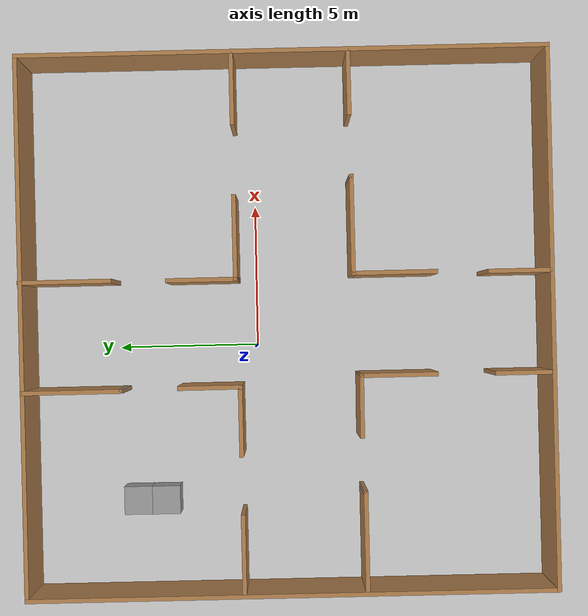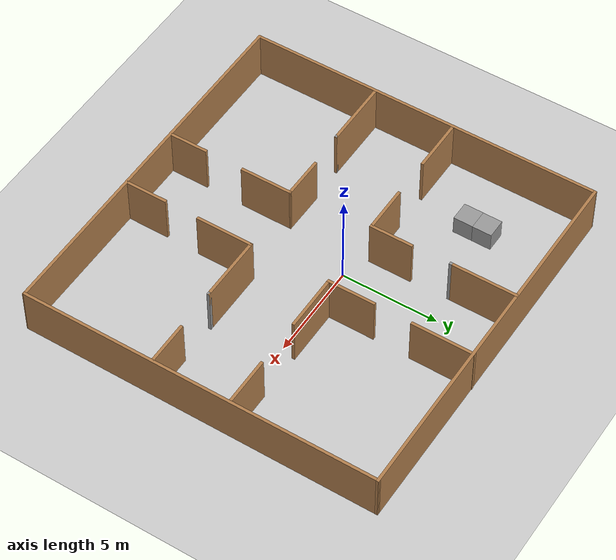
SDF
<sdf version="1.7">
 <world name="default">
  <light name="sun" type="directional">
   <pose>0 0 10 0 -0 0</pose>
   <diffuse>0.8 0.8 0.8 1</diffuse>
   <specular>0.2 0.2 0.2 1</specular>
   <attenuation>
    <range>1000</range>
    <constant>0.9</constant>
    <linear>0.01</linear>
    <quadratic>0.001</quadratic>
   </attenuation>
   <direction>-0.5 0.1 -0.9</direction>
   <spot><inner_angle>0</inner_angle><outer_angle>0</outer_angle><falloff>0</falloff></spot>
  </light>
  <model name="ground_plane">
   <static>1</static>
   <link name="link">
    <collision name="collision">
     <geometry><plane><normal>0 0 1</normal><size>100 100</size></plane></geometry>
     <surface>
      <contact><collide_bitmask>65535</collide_bitmask></contact>
      <friction><ode><mu>100</mu><mu2>50</mu2></ode></friction>
     </surface>
    </collision>
    <visual name="visual">
     <cast_shadows>0</cast_shadows>
     <geometry><plane><normal>0 0 1</normal><size>100 100</size></plane></geometry>
     <material>
      <script><uri>file://media/materials/scripts/gazebo.material</uri><name>Gazebo/Grey</name></script>
     </material>
    </visual>
   </link>
  </model>
  <gravity>0 0 -9.8</gravity>
  <magnetic_field>6e-06 2.3e-05 -4.2e-05</magnetic_field>
  <atmosphere type="adiabatic"/>
  <physics type="ode">
   <max_step_size>0.001</max_step_size>
   <real_time_factor>1</real_time_factor>
   <real_time_update_rate>1000</real_time_update_rate>
  </physics>
  <scene><ambient>0.4 0.4 0.4 1</ambient><background>0.7 0.7 0.7 1</background><shadows>1</shadows></scene>
  <spherical_coordinates>
   <surface_model>EARTH_WGS84</surface_model>
   <latitude_deg>0</latitude_deg>
   <longitude_deg>0</longitude_deg>
   <elevation>0</elevation>
   <heading_deg>0</heading_deg>
  </spherical_coordinates>
  <model name="vp_2.world">
   <pose>0.7675 -1.05082 0 0 -0 0</pose>
   <link name="Wall_0">
    <collision name="Wall_0_Collision">
     <geometry><box><size>18.5486 0.15 2.5</size></box></geometry>
     <pose>0 0 1.25 0 -0 0</pose>
    </collision>
    <visual name="Wall_0_Visual">
     <pose>0 0 1.25 0 -0 0</pose>
     <geometry><box><size>18.5486 0.15 2.5</size></box></geometry>
     <material>
      <script><uri>file://media/materials/scripts/gazebo.material</uri><name>Gazebo/Wood</name></script>
      <ambient>1 1 1 1</ambient>
     </material>
     <meta><layer>0</layer></meta>
    </visual>
    <pose>9.425 -0.011205 0 0 -0 1.56991</pose>
   </link>
   <link name="Wall_16">
    <collision name="Wall_16_Collision">
     <geometry><box><size>3.5 0.15 2.5</size></box></geometry>
     <pose>0 0 1.25 0 -0 0</pose>
    </collision>
    <visual name="Wall_16_Visual">
     <pose>0 0 1.25 0 -0 0</pose>
     <geometry><box><size>3.5 0.15 2.5</size></box></geometry>
     <material>
      <script><uri>file://media/materials/scripts/gazebo.material</uri><name>Gazebo/Wood</name></script>
      <ambient>1 1 1 1</ambient>
     </material>
     <meta><layer>0</layer></meta>
    </visual>
    <pose>-2.22938 7.47358 0 0 -0 -1.5708</pose>
   </link>
   <link name="Wall_17">
    <collision name="Wall_17_Collision">
     <geometry><box><size>0.15 0.15 2.5</size></box></geometry>
     <pose>0 0 1.25 0 -0 0</pose>
    </collision>
    <visual name="Wall_17_Visual">
     <pose>0 0 1.25 0 -0 0</pose>
     <geometry><box><size>0.15 0.15 2.5</size></box></geometry>
     <material>
      <script><uri>file://media/materials/scripts/gazebo.material</uri><name>Gazebo/Grey</name></script>
      <ambient>1 1 1 1</ambient>
     </material>
     <meta><layer>0</layer></meta>
    </visual>
    <pose>-2.22938 5.79858 0 0 -0 0</pose>
   </link>
   <link name="Wall_19">
    <collision name="Wall_19_Collision">
     <geometry><box><size>2.25 0.15 2.5</size></box></geometry>
     <pose>0 0 1.25 0 -0 0</pose>
    </collision>
    <visual name="Wall_19_Visual">
     <pose>0 0 1.25 0 -0 0</pose>
     <geometry><box><size>2.25 0.15 2.5</size></box></geometry>
     <material>
      <script><uri>file://media/materials/scripts/gazebo.material</uri><name>Gazebo/Wood</name></script>
      <ambient>1 1 1 1</ambient>
     </material>
     <meta><layer>0</layer></meta>
    </visual>
    <pose>-2.17587 2.70823 0 0 -0 1.5708</pose>
   </link>
   <link name="Wall_2">
    <collision name="Wall_2_Collision">
     <geometry><box><size>19 0.15 2.5</size></box></geometry>
     <pose>0 0 1.25 0 -0 0</pose>
    </collision>
    <visual name="Wall_2_Visual">
     <pose>0 0 1.25 0 -0 0</pose>
     <geometry><box><size>19 0.15 2.5</size></box></geometry>
     <material>
      <script><uri>file://media/materials/scripts/gazebo.material</uri><name>Gazebo/Wood</name></script>
      <ambient>1 1 1 1</ambient>
     </material>
     <meta><layer>0</layer></meta>
    </visual>
    <pose>-0.00818 -9.2105 0 0 -0 3.14159</pose>
   </link>
   <link name="Wall_21">
    <collision name="Wall_21_Collision">
     <geometry><box><size>2.5 0.15 2.5</size></box></geometry>
     <pose>0 0 1.25 0 -0 0</pose>
    </collision>
    <visual name="Wall_21_Visual">
     <pose>0 0 1.25 0 -0 0</pose>
     <geometry><box><size>2.5 0.15 2.5</size></box></geometry>
     <material>
      <script><uri>file://media/materials/scripts/gazebo.material</uri><name>Gazebo/Wood</name></script>
      <ambient>1 1 1 1</ambient>
     </material>
     <meta><layer>0</layer></meta>
    </visual>
    <pose>-3.35087 1.65823 0 0 -0 3.14159</pose>
   </link>
   <link name="Wall_23">
    <collision name="Wall_23_Collision">
     <geometry><box><size>2.75 0.15 2.5</size></box></geometry>
     <pose>0 0 1.25 0 -0 0</pose>
    </collision>
    <visual name="Wall_23_Visual">
     <pose>0 0 1.25 0 -0 0</pose>
     <geometry><box><size>2.75 0.15 2.5</size></box></geometry>
     <material>
      <script><uri>file://media/materials/scripts/gazebo.material</uri><name>Gazebo/Wood</name></script>
      <ambient>1 1 1 1</ambient>
     </material>
     <meta><layer>0</layer></meta>
    </visual>
    <pose>-7.97668 1.65752 0 0 -0 3.14159</pose>
   </link>
   <link name="Wall_25">
    <collision name="Wall_25_Collision">
     <geometry><box><size>3.25 0.15 2.5</size></box></geometry>
     <pose>0 0 1.25 0 -0 0</pose>
    </collision>
    <visual name="Wall_25_Visual">
     <pose>0 0 1.25 0 -0 0</pose>
     <geometry><box><size>3.25 0.15 2.5</size></box></geometry>
     <material>
      <script><uri>file://media/materials/scripts/gazebo.material</uri><name>Gazebo/Wood</name></script>
      <ambient>1 1 1 1</ambient>
     </material>
     <meta><layer>0</layer></meta>
    </visual>
    <pose>1.59244 7.66057 0 0 -0 -1.5708</pose>
   </link>
   <link name="Wall_29">
    <collision name="Wall_29_Collision">
     <geometry><box><size>2.5 0.15 2.5</size></box></geometry>
     <pose>0 0 1.25 0 -0 0</pose>
    </collision>
    <visual name="Wall_29_Visual">
     <pose>0 0 1.25 0 -0 0</pose>
     <geometry><box><size>2.5 0.15 2.5</size></box></geometry>
     <material>
      <script><uri>file://media/materials/scripts/gazebo.material</uri><name>Gazebo/Wood</name></script>
      <ambient>1 1 1 1</ambient>
     </material>
     <meta><layer>0</layer></meta>
    </visual>
    <pose>1.55894 2.91447 0 0 -0 -1.5708</pose>
   </link>
   <link name="Wall_3">
    <collision name="Wall_3_Collision">
     <geometry><box><size>18.5486 0.15 2.5</size></box></geometry>
     <pose>0 0 1.25 0 -0 0</pose>
    </collision>
    <visual name="Wall_3_Visual">
     <pose>0 0 1.25 0 -0 0</pose>
     <geometry><box><size>18.5486 0.15 2.5</size></box></geometry>
     <material>
      <script><uri>file://media/materials/scripts/gazebo.material</uri><name>Gazebo/Wood</name></script>
      <ambient>1 1 1 1</ambient>
     </material>
     <meta><layer>0</layer></meta>
    </visual>
    <pose>-9.425 -0.011205 0 0 -0 1.56991</pose>
   </link>
   <link name="Wall_30">
    <collision name="Wall_30_Collision">
     <geometry><box><size>3 0.15 2.5</size></box></geometry>
     <pose>0 0 1.25 0 -0 0</pose>
    </collision>
    <visual name="Wall_30_Visual">
     <pose>0 0 1.25 0 -0 0</pose>
     <geometry><box><size>3 0.15 2.5</size></box></geometry>
     <material>
      <script><uri>file://media/materials/scripts/gazebo.material</uri><name>Gazebo/Wood</name></script>
      <ambient>1 1 1 1</ambient>
     </material>
     <meta><layer>0</layer></meta>
    </visual>
    <pose>2.98394 1.73947 0 0 -0 0</pose>
   </link>
   <link name="Wall_34">
    <collision name="Wall_34_Collision">
     <geometry><box><size>2.5 0.15 2.5</size></box></geometry>
     <pose>0 0 1.25 0 -0 0</pose>
    </collision>
    <visual name="Wall_34_Visual">
     <pose>0 0 1.25 0 -0 0</pose>
     <geometry><box><size>2.5 0.15 2.5</size></box></geometry>
     <material>
      <script><uri>file://media/materials/scripts/gazebo.material</uri><name>Gazebo/Wood</name></script>
      <ambient>1 1 1 1</ambient>
     </material>
     <meta><layer>0</layer></meta>
    </visual>
    <pose>8.14861 1.72943 0 0 -0 0</pose>
   </link>
   <link name="Wall_36">
    <collision name="Wall_36_Collision">
     <geometry><box><size>3.5 0.15 2.5</size></box></geometry>
     <pose>0 0 1.25 0 -0 0</pose>
    </collision>
    <visual name="Wall_36_Visual">
     <pose>0 0 1.25 0 -0 0</pose>
     <geometry><box><size>3.5 0.15 2.5</size></box></geometry>
     <material>
      <script><uri>file://media/materials/scripts/gazebo.material</uri><name>Gazebo/Wood</name></script>
      <ambient>1 1 1 1</ambient>
     </material>
     <meta><layer>0</layer></meta>
    </visual>
    <pose>-7.60857 -2.60194 0 0 -0 0</pose>
   </link>
   <link name="Wall_37">
    <collision name="Wall_37_Collision">
     <geometry><box><size>0.15 0.15 2.5</size></box></geometry>
     <pose>0 0 1.25 0 -0 0</pose>
    </collision>
    <visual name="Wall_37_Visual">
     <pose>0 0 1.25 0 -0 0</pose>
     <geometry><box><size>0.15 0.15 2.5</size></box></geometry>
     <material>
      <script><uri>file://media/materials/scripts/gazebo.material</uri><name>Gazebo/Grey</name></script>
      <ambient>1 1 1 1</ambient>
     </material>
     <meta><layer>0</layer></meta>
    </visual>
    <pose>-5.93357 -2.60194 0 0 -0 0</pose>
   </link>
   <link name="Wall_39">
    <collision name="Wall_39_Collision">
     <geometry><box><size>2.25007 0.15 2.5</size></box></geometry>
     <pose>0 0 1.25 0 -0 0</pose>
    </collision>
    <visual name="Wall_39_Visual">
     <pose>0 0 1.25 0 -0 0</pose>
     <geometry><box><size>2.25007 0.15 2.5</size></box></geometry>
     <material>
      <script><uri>file://media/materials/scripts/gazebo.material</uri><name>Gazebo/Wood</name></script>
      <ambient>1 1 1 1</ambient>
     </material>
     <meta><layer>0</layer></meta>
    </visual>
    <pose>-2.92595 -2.54032 0 0 -0 -0.008214</pose>
   </link>
   <link name="Wall_4">
    <collision name="Wall_4_Collision">
     <geometry><box><size>19 0.15 2.5</size></box></geometry>
     <pose>0 0 1.25 0 -0 0</pose>
    </collision>
    <visual name="Wall_4_Visual">
     <pose>0 0 1.25 0 -0 0</pose>
     <geometry><box><size>19 0.15 2.5</size></box></geometry>
     <material>
      <script><uri>file://media/materials/scripts/gazebo.material</uri><name>Gazebo/Wood</name></script>
      <ambient>1 1 1 1</ambient>
     </material>
     <meta><layer>0</layer></meta>
    </visual>
    <pose>0.00818 9.18809 0 0 -0 0</pose>
   </link>
   <link name="Wall_42">
    <collision name="Wall_42_Collision">
     <geometry><box><size>2.73275 0.15 2.5</size></box></geometry>
     <pose>0 0 1.25 0 -0 0</pose>
    </collision>
    <visual name="Wall_42_Visual">
     <pose>0 0 1.25 0 -0 0</pose>
     <geometry><box><size>2.73275 0.15 2.5</size></box></geometry>
     <material>
      <script><uri>file://media/materials/scripts/gazebo.material</uri><name>Gazebo/Wood</name></script>
      <ambient>1 1 1 1</ambient>
     </material>
     <meta><layer>0</layer></meta>
    </visual>
    <pose>-1.87595 -3.84032 0 0 -0 -1.5708</pose>
   </link>
   <link name="Wall_44">
    <collision name="Wall_44_Collision">
     <geometry><box><size>2 0.15 2.5</size></box></geometry>
     <pose>0 0 1.25 0 -0 0</pose>
    </collision>
    <visual name="Wall_44_Visual">
     <pose>0 0 1.25 0 -0 0</pose>
     <geometry><box><size>2 0.15 2.5</size></box></geometry>
     <material>
      <script><uri>file://media/materials/scripts/gazebo.material</uri><name>Gazebo/Wood</name></script>
      <ambient>1 1 1 1</ambient>
     </material>
     <meta><layer>0</layer></meta>
    </visual>
    <pose>-1.89553 -8.17353 0 0 -0 -1.5708</pose>
   </link>
   <link name="Wall_46">
    <collision name="Wall_46_Collision">
     <geometry><box><size>3.5 0.15 2.5</size></box></geometry>
     <pose>0 0 1.25 0 -0 0</pose>
    </collision>
    <visual name="Wall_46_Visual">
     <pose>0 0 1.25 0 -0 0</pose>
     <geometry><box><size>3.5 0.15 2.5</size></box></geometry>
     <material>
      <script><uri>file://media/materials/scripts/gazebo.material</uri><name>Gazebo/Wood</name></script>
      <ambient>1 1 1 1</ambient>
     </material>
     <meta><layer>0</layer></meta>
    </visual>
    <pose>3.34477 -2.34233 0 0 -0 0</pose>
   </link>
   <link name="Wall_47">
    <collision name="Wall_47_Collision">
     <geometry><box><size>0.15 0.15 2.5</size></box></geometry>
     <pose>0 0 1.25 0 -0 0</pose>
    </collision>
    <visual name="Wall_47_Visual">
     <pose>0 0 1.25 0 -0 0</pose>
     <geometry><box><size>0.15 0.15 2.5</size></box></geometry>
     <material>
      <script><uri>file://media/materials/scripts/gazebo.material</uri><name>Gazebo/Grey</name></script>
      <ambient>1 1 1 1</ambient>
     </material>
     <meta><layer>0</layer></meta>
    </visual>
    <pose>5.01978 -2.34233 0 0 -0 0</pose>
   </link>
   <link name="Wall_49">
    <collision name="Wall_49_Collision">
     <geometry><box><size>3 0.15 2.5</size></box></geometry>
     <pose>0 0 1.25 0 -0 0</pose>
    </collision>
    <visual name="Wall_49_Visual">
     <pose>0 0 1.25 0 -0 0</pose>
     <geometry><box><size>3 0.15 2.5</size></box></geometry>
     <material>
      <script><uri>file://media/materials/scripts/gazebo.material</uri><name>Gazebo/Wood</name></script>
      <ambient>1 1 1 1</ambient>
     </material>
     <meta><layer>0</layer></meta>
    </visual>
    <pose>1.66978 -3.76734 0 0 -0 -1.5708</pose>
   </link>
   <link name="Wall_52">
    <collision name="Wall_52_Collision">
     <geometry><box><size>2.25 0.15 2.5</size></box></geometry>
     <pose>0 0 1.25 0 -0 0</pose>
    </collision>
    <visual name="Wall_52_Visual">
     <pose>0 0 1.25 0 -0 0</pose>
     <geometry><box><size>2.25 0.15 2.5</size></box></geometry>
     <material>
      <script><uri>file://media/materials/scripts/gazebo.material</uri><name>Gazebo/Wood</name></script>
      <ambient>1 1 1 1</ambient>
     </material>
     <meta><layer>0</layer></meta>
    </visual>
    <pose>1.63465 -8.12458 0 0 -0 -1.5708</pose>
   </link>
   <link name="Wall_54">
    <collision name="Wall_54_Collision">
     <geometry><box><size>2.25 0.15 2.5</size></box></geometry>
     <pose>0 0 1.25 0 -0 0</pose>
    </collision>
    <visual name="Wall_54_Visual">
     <pose>0 0 1.25 0 -0 0</pose>
     <geometry><box><size>2.25 0.15 2.5</size></box></geometry>
     <material>
      <script><uri>file://media/materials/scripts/gazebo.material</uri><name>Gazebo/Wood</name></script>
      <ambient>1 1 1 1</ambient>
     </material>
     <meta><layer>0</layer></meta>
    </visual>
    <pose>8.27069 -2.32124 0 0 -0 0</pose>
   </link>
   <static>1</static>
  </model>
  <model name="unit_box">
   <pose>-5.46162 3.39366 0.499995 -1e-05 -0 -0.000556</pose>
   <link name="link">
    <inertial>
     <mass>1</mass>
     <inertia>
      <ixx>0.166667</ixx>
      <ixy>0</ixy>
      <ixz>0</ixz>
      <iyy>0.166667</iyy>
      <iyz>0</iyz>
      <izz>0.166667</izz>
     </inertia>
    </inertial>
    <collision name="collision"><geometry><box><size>1 1 1</size></box></geometry></collision>
    <visual name="visual">
     <geometry><box><size>1 1 1</size></box></geometry>
     <material>
      <script><name>Gazebo/Grey</name><uri>file://media/materials/scripts/gazebo.material</uri></script>
     </material>
    </visual>
   </link>
  </model>
  <model name="unit_box_0">
   <pose>-5.45717 4.39368 0.499995 -1e-05 -0 -0.000554</pose>
   <link name="link">
    <inertial>
     <mass>1</mass>
     <inertia>
      <ixx>0.166667</ixx>
      <ixy>0</ixy>
      <ixz>0</ixz>
      <iyy>0.166667</iyy>
      <iyz>0</iyz>
      <izz>0.166667</izz>
     </inertia>
    </inertial>
    <collision name="collision"><geometry><box><size>1 1 1</size></box></geometry></collision>
    <visual name="visual">
     <geometry><box><size>1 1 1</size></box></geometry>
     <material>
      <script><name>Gazebo/Grey</name><uri>file://media/materials/scripts/gazebo.material</uri></script>
     </material>
    </visual>
   </link>
  </model>
 </world>
</sdf>
